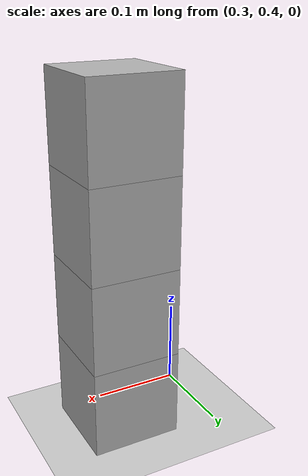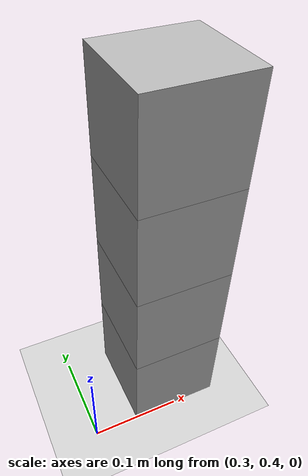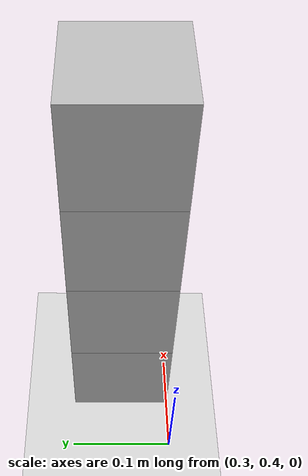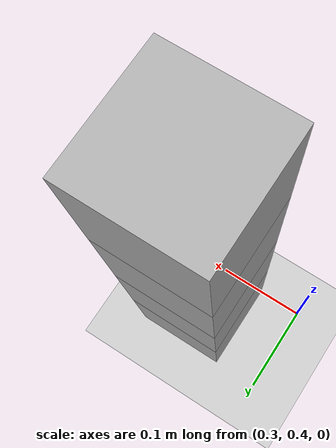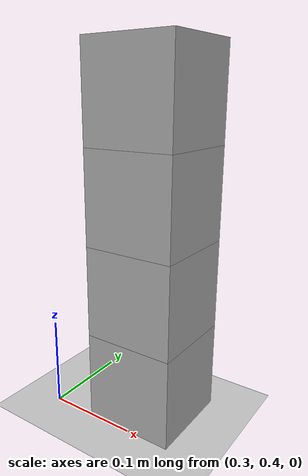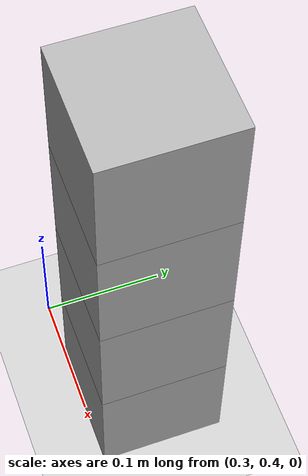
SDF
<sdf version='1.9'>
  <world name='empty'>
    <physics name='1ms' type='ignored'>
      <max_step_size>0.001</max_step_size>
      <real_time_factor>1</real_time_factor>
      <real_time_update_rate>1000</real_time_update_rate>
    </physics>
    <plugin name='gz::sim::systems::Physics' filename='ignition-gazebo-physics-system'/>
    <plugin name='gz::sim::systems::UserCommands' filename='ignition-gazebo-user-commands-system'/>
    <plugin name='gz::sim::systems::SceneBroadcaster' filename='ignition-gazebo-scene-broadcaster-system'/>
    <plugin name='gz::sim::systems::Contact' filename='ignition-gazebo-contact-system'/>
    <gravity>0 0 -9.8</gravity>
    <magnetic_field>6e-06 2.3e-05 -4.2e-05</magnetic_field>
    <atmosphere type='adiabatic'/>
    <scene>
      <ambient>0.4 0.4 0.4 1</ambient>
      <background>0.7 0.7 0.7 1</background>
      <shadows>true</shadows>
    </scene>
    <model name='ground_plane'>
      <static>true</static>
      <link name='link'>
        <collision name='collision'>
          <geometry>
            <plane>
              <normal>0 0 1</normal>
              <size>100 100</size>
            </plane>
          </geometry>
          <surface>
            <friction>
              <ode/>
            </friction>
            <bounce/>
            <contact/>
          </surface>
        </collision>
        <visual name='visual'>
          <geometry>
            <plane>
              <normal>0 0 1</normal>
              <size>100 100</size>
            </plane>
          </geometry>
          <material>
            <ambient>0.8 0.8 0.8 1</ambient>
            <diffuse>0.8 0.8 0.8 1</diffuse>
            <specular>0.8 0.8 0.8 1</specular>
          </material>
        </visual>
        <pose>0 0 0 0 -0 0</pose>
        <inertial>
          <pose>0 0 0 0 -0 0</pose>
          <mass>1</mass>
          <inertia>
            <ixx>1</ixx>
            <ixy>0</ixy>
            <ixz>0</ixz>
            <iyy>1</iyy>
            <iyz>0</iyz>
            <izz>1</izz>
          </inertia>
        </inertial>
        <enable_wind>false</enable_wind>
      </link>
      <pose>0 0 0 0 -0 0</pose>
      <self_collide>false</self_collide>
    </model>

    <model name='box1'>
      <pose>0.40000 0.45000 0.05 0 0 -0</pose>
      <link name='box1_link'>
        <inertial>
          <inertia>
            <ixx>0.0016666</ixx>
            <ixy>0</ixy>
            <ixz>0</ixz>
            <iyy>0.0016666</iyy>
            <iyz>0</iyz>
            <izz>0.0016666</izz>
          </inertia>
          <mass>1</mass>
          <pose>0 0 0 0 -0 0</pose>
        </inertial>
        <collision name='box1_collision'>
          <geometry>
            <box>
              <size>0.1 0.1 0.1</size>
            </box>
          </geometry>
          <surface>
            <friction>
              <ode/>
            </friction>
            <bounce/>
            <contact/>
          </surface>
        </collision>
        <visual name='box1_visual'>
          <geometry>
            <box>
              <size>0.1 0.1 0.1</size>
            </box>
          </geometry>
          <material>
            <ambient>0.3 0.3 0.3 1</ambient>
            <diffuse>0.7 0.7 0.7 1</diffuse>
            <specular>1 1 1 1</specular>
          </material>
        </visual>
        <pose>0 0 0 0 -0 0</pose>
        <enable_wind>false</enable_wind>
      </link>
      <static>false</static>
      <self_collide>false</self_collide>
    </model>

    <model name='box2'>
      <pose>0.40000 0.45000 0.15 0 0 -0</pose>
      <link name='box2_link'>
        <inertial>
          <inertia>
            <ixx>0.0016666</ixx>
            <ixy>0</ixy>
            <ixz>0</ixz>
            <iyy>0.0016666</iyy>
            <iyz>0</iyz>
            <izz>0.0016666</izz>
          </inertia>
          <mass>1</mass>
          <pose>0 0 0 0 -0 0</pose>
        </inertial>
        <collision name='box2_collision'>
          <geometry>
            <box>
              <size>0.1 0.1 0.1</size>
            </box>
          </geometry>
          <surface>
            <friction>
              <ode/>
            </friction>
            <bounce/>
            <contact/>
          </surface>
        </collision>
        <visual name='box2_visual'>
          <geometry>
            <box>
              <size>0.1 0.1 0.1</size>
            </box>
          </geometry>
          <material>
            <ambient>0.3 0.3 0.3 1</ambient>
            <diffuse>0.7 0.7 0.7 1</diffuse>
            <specular>1 1 1 1</specular>
          </material>
        </visual>
        <pose>0 0 0 0 -0 0</pose>
        <enable_wind>false</enable_wind>
      </link>
      <static>false</static>
      <self_collide>false</self_collide>
    </model>

    <model name='box3'>
      <pose>0.40000 0.45000 0.25 0 0 -0</pose>
      <link name='box3_link'>
        <inertial>
          <inertia>
            <ixx>0.0016666</ixx>
            <ixy>0</ixy>
            <ixz>0</ixz>
            <iyy>0.0016666</iyy>
            <iyz>0</iyz>
            <izz>0.0016666</izz>
          </inertia>
          <mass>1</mass>
          <pose>0 0 0 0 -0 0</pose>
        </inertial>
        <collision name='box3_collision'>
          <geometry>
            <box>
              <size>0.1 0.1 0.1</size>
            </box>
          </geometry>
          <surface>
            <friction>
              <ode/>
            </friction>
            <bounce/>
            <contact/>
          </surface>
        </collision>
        <visual name='box3_visual'>
          <geometry>
            <box>
              <size>0.1 0.1 0.1</size>
            </box>
          </geometry>
          <material>
            <ambient>0.3 0.3 0.3 1</ambient>
            <diffuse>0.7 0.7 0.7 1</diffuse>
            <specular>1 1 1 1</specular>
          </material>
        </visual>
        <pose>0 0 0 0 -0 0</pose>
        <enable_wind>false</enable_wind>
      </link>
      <static>false</static>
      <self_collide>false</self_collide>
    </model>

    <model name='box4'>
      <pose>0.40000 0.45000 0.35 0 0 -0</pose>
      <link name='box4_link'>
        <inertial>
          <inertia>
            <ixx>0.0016666</ixx>
            <ixy>0</ixy>
            <ixz>0</ixz>
            <iyy>0.0016666</iyy>
            <iyz>0</iyz>
            <izz>0.0016666</izz>
          </inertia>
          <mass>1</mass>
          <pose>0 0 0 0 -0 0</pose>
        </inertial>
        <collision name='box4_collision'>
          <geometry>
            <box>
              <size>0.1 0.1 0.1</size>
            </box>
          </geometry>
          <surface>
            <friction>
              <ode/>
            </friction>
            <bounce/>
            <contact/>
          </surface>
        </collision>
        <visual name='box4_visual'>
          <geometry>
            <box>
              <size>0.1 0.1 0.1</size>
            </box>
          </geometry>
          <material>
            <ambient>0.3 0.3 0.3 1</ambient>
            <diffuse>0.7 0.7 0.7 1</diffuse>
            <specular>1 1 1 1</specular>
          </material>
        </visual>
        <pose>0 0 0 0 -0 0</pose>
        <enable_wind>false</enable_wind>
      </link>
      <static>false</static>
      <self_collide>false</self_collide>
    </model>

    <light name='sun' type='directional'>
      <pose>0 0 10 0 -0 0</pose>
      <cast_shadows>true</cast_shadows>
      <intensity>1</intensity>
      <direction>-0.5 0.1 -0.9</direction>
      <diffuse>0.8 0.8 0.8 1</diffuse>
      <specular>0.2 0.2 0.2 1</specular>
      <attenuation>
        <range>1000</range>
        <linear>0.01</linear>
        <constant>0.90000000000000002</constant>
        <quadratic>0.001</quadratic>
      </attenuation>
      <spot>
        <inner_angle>0</inner_angle>
        <outer_angle>0</outer_angle>
        <falloff>0</falloff>
      </spot>
    </light>
  </world>
</sdf>
